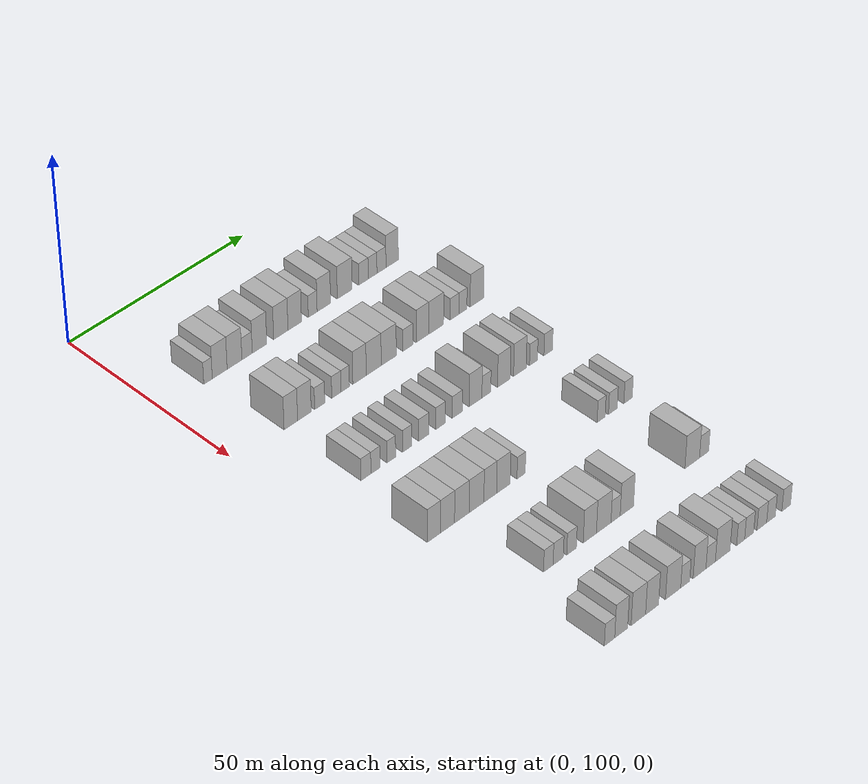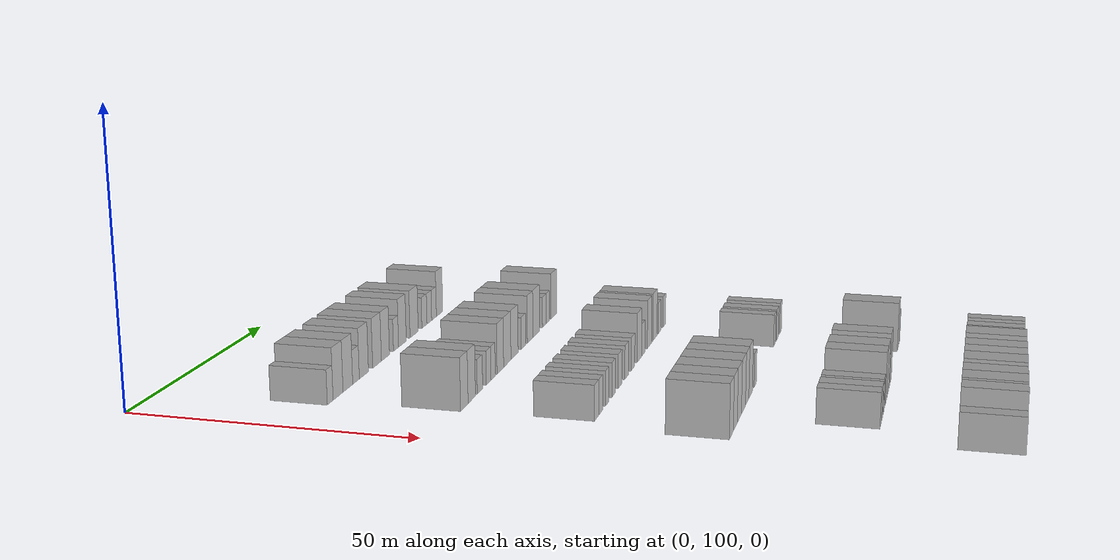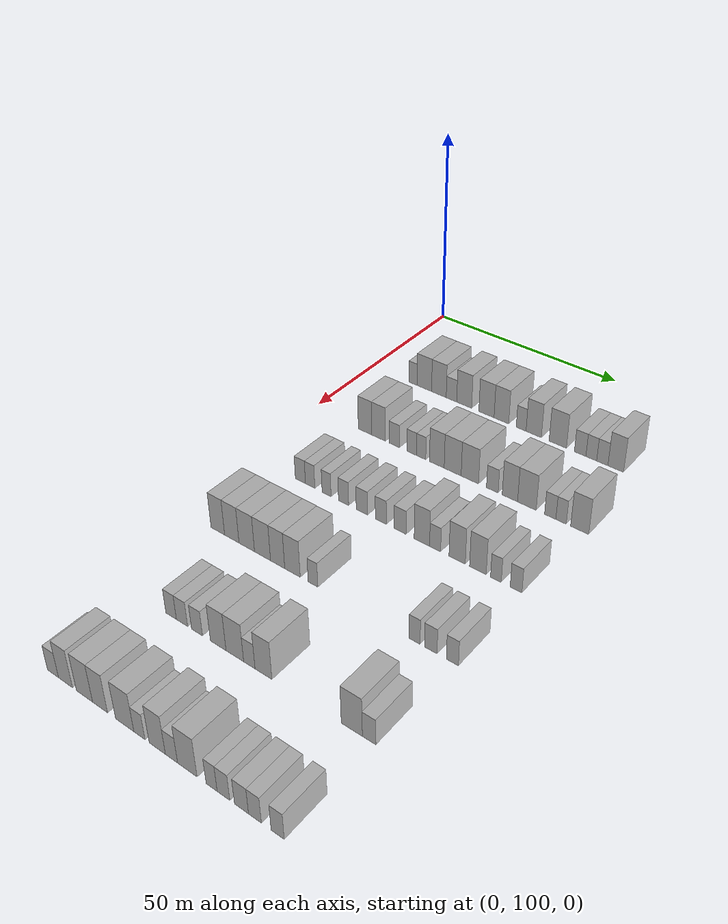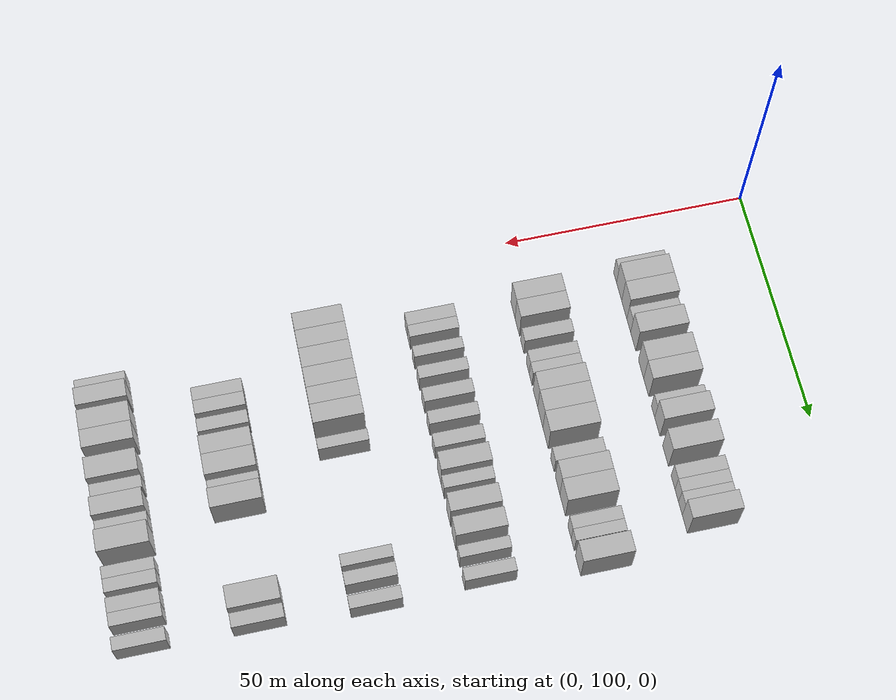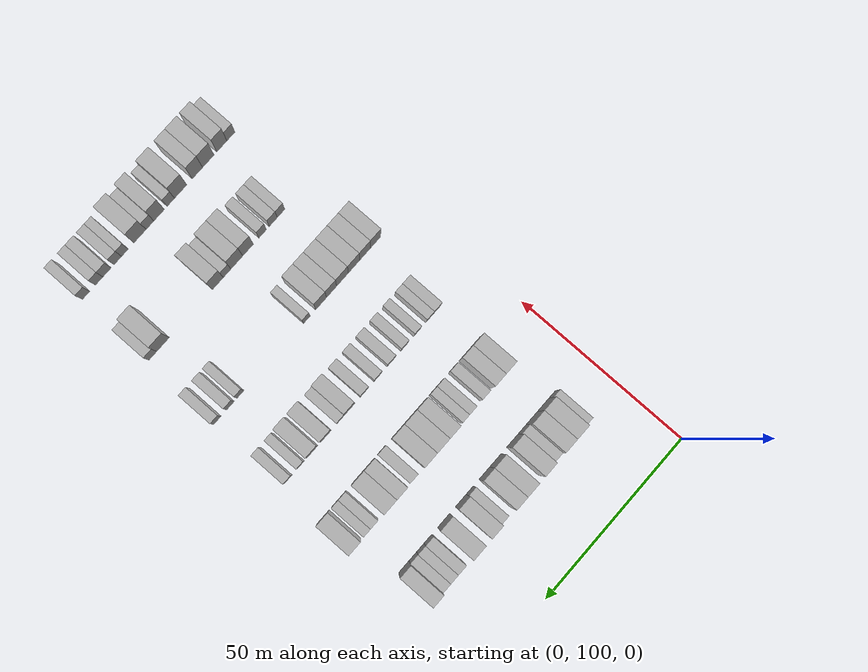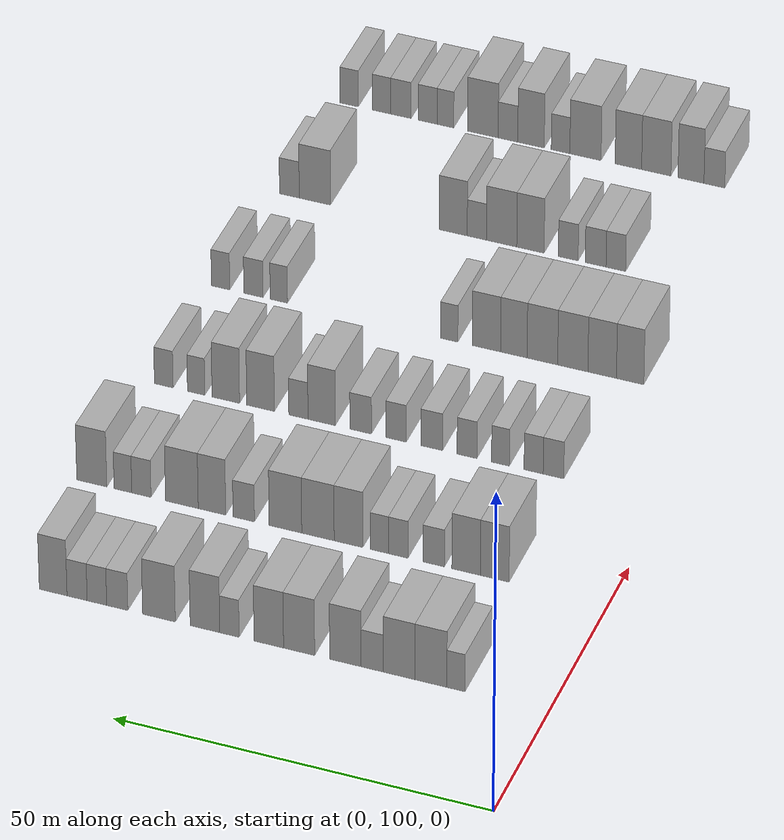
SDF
<sdf version="1.6">
 <world name="default">
  <model name="building_123">
   <static>1</static>
   <pose>25.0000 112.2786 0 0.000000 0.000000 0.000000</pose>
   <link name="link">
    <pose>0 0 3.00 0 0 0</pose>
    <collision name="collision"><geometry><box><size>10.0000 2.4017 6.0000</size></box></geometry></collision>
    <visual name="visual">
     <cast_shadows>0</cast_shadows>
     <geometry><box><size>10.0000 2.4017 6.0000</size></box></geometry>
     <material>
      <script>
       <uri>model://HANNAS_wall/materials/scripts</uri>
       <uri>model://HANNAS_wall/materials/textures</uri>
       <name>vrc/HANNAS_wall</name>
      </script>
     </material>
    </visual>
   </link>
  </model>
  <model name="building_124">
   <static>1</static>
   <pose>25.0000 115.5905 0 0.000000 0.000000 0.000000</pose>
   <link name="link">
    <pose>0 0 4.50 0 0 0</pose>
    <collision name="collision"><geometry><box><size>10.0000 4.2222 9.0000</size></box></geometry></collision>
    <visual name="visual">
     <cast_shadows>0</cast_shadows>
     <geometry><box><size>10.0000 4.2222 9.0000</size></box></geometry>
     <material>
      <script>
       <uri>model://HANNAS_wall/materials/scripts</uri>
       <uri>model://HANNAS_wall/materials/textures</uri>
       <name>vrc/HANNAS_wall</name>
      </script>
     </material>
    </visual>
   </link>
  </model>
  <model name="building_125">
   <static>1</static>
   <pose>25.0000 119.8025 0 0.000000 0.000000 0.000000</pose>
   <link name="link">
    <pose>0 0 4.50 0 0 0</pose>
    <collision name="collision"><geometry><box><size>10.0000 4.2018 9.0000</size></box></geometry></collision>
    <visual name="visual">
     <cast_shadows>0</cast_shadows>
     <geometry><box><size>10.0000 4.2018 9.0000</size></box></geometry>
     <material>
      <script>
       <uri>model://HANNAS_wall/materials/scripts</uri>
       <uri>model://HANNAS_wall/materials/textures</uri>
       <name>vrc/HANNAS_wall</name>
      </script>
     </material>
    </visual>
   </link>
  </model>
  <model name="building_126">
   <static>1</static>
   <pose>25.0000 123.3904 0 0.000000 0.000000 0.000000</pose>
   <link name="link">
    <pose>0 0 3.00 0 0 0</pose>
    <collision name="collision"><geometry><box><size>10.0000 2.9739 6.0000</size></box></geometry></collision>
    <visual name="visual">
     <cast_shadows>0</cast_shadows>
     <geometry><box><size>10.0000 2.9739 6.0000</size></box></geometry>
     <material>
      <script>
       <uri>model://HANNAS_wall/materials/scripts</uri>
       <uri>model://HANNAS_wall/materials/textures</uri>
       <name>vrc/HANNAS_wall</name>
      </script>
     </material>
    </visual>
   </link>
  </model>
  <model name="building_127">
   <static>1</static>
   <pose>25.0000 126.9693 0 0.000000 0.000000 0.000000</pose>
   <link name="link">
    <pose>0 0 4.50 0 0 0</pose>
    <collision name="collision"><geometry><box><size>10.0000 4.1839 9.0000</size></box></geometry></collision>
    <visual name="visual">
     <cast_shadows>0</cast_shadows>
     <geometry><box><size>10.0000 4.1839 9.0000</size></box></geometry>
     <material>
      <script>
       <uri>model://HANNAS_wall/materials/scripts</uri>
       <uri>model://HANNAS_wall/materials/textures</uri>
       <name>vrc/HANNAS_wall</name>
      </script>
     </material>
    </visual>
   </link>
  </model>
  <model name="building_128">
   <static>1</static>
   <pose>25.0000 133.1405 0 0.000000 0.000000 0.000000</pose>
   <link name="link">
    <pose>0 0 4.50 0 0 0</pose>
    <collision name="collision"><geometry><box><size>10.0000 4.1585 9.0000</size></box></geometry></collision>
    <visual name="visual">
     <cast_shadows>0</cast_shadows>
     <geometry><box><size>10.0000 4.1585 9.0000</size></box></geometry>
     <material>
      <script>
       <uri>model://HANNAS_wall/materials/scripts</uri>
       <uri>model://HANNAS_wall/materials/textures</uri>
       <name>vrc/HANNAS_wall</name>
      </script>
     </material>
    </visual>
   </link>
  </model>
  <model name="building_129">
   <static>1</static>
   <pose>25.0000 137.1946 0 0.000000 0.000000 0.000000</pose>
   <link name="link">
    <pose>0 0 4.50 0 0 0</pose>
    <collision name="collision"><geometry><box><size>10.0000 3.9497 9.0000</size></box></geometry></collision>
    <visual name="visual">
     <cast_shadows>0</cast_shadows>
     <geometry><box><size>10.0000 3.9497 9.0000</size></box></geometry>
     <material>
      <script>
       <uri>model://HANNAS_wall/materials/scripts</uri>
       <uri>model://HANNAS_wall/materials/textures</uri>
       <name>vrc/HANNAS_wall</name>
      </script>
     </material>
    </visual>
   </link>
  </model>
  <model name="building_130">
   <static>1</static>
   <pose>25.0000 142.4688 0 0.000000 0.000000 0.000000</pose>
   <link name="link">
    <pose>0 0 3.00 0 0 0</pose>
    <collision name="collision"><geometry><box><size>10.0000 2.5988 6.0000</size></box></geometry></collision>
    <visual name="visual">
     <cast_shadows>0</cast_shadows>
     <geometry><box><size>10.0000 2.5988 6.0000</size></box></geometry>
     <material>
      <script>
       <uri>model://HANNAS_wall/materials/scripts</uri>
       <uri>model://HANNAS_wall/materials/textures</uri>
       <name>vrc/HANNAS_wall</name>
      </script>
     </material>
    </visual>
   </link>
  </model>
  <model name="building_131">
   <static>1</static>
   <pose>25.0000 145.7587 0 0.000000 0.000000 0.000000</pose>
   <link name="link">
    <pose>0 0 4.50 0 0 0</pose>
    <collision name="collision"><geometry><box><size>10.0000 3.9810 9.0000</size></box></geometry></collision>
    <visual name="visual">
     <cast_shadows>0</cast_shadows>
     <geometry><box><size>10.0000 3.9810 9.0000</size></box></geometry>
     <material>
      <script>
       <uri>model://HANNAS_wall/materials/scripts</uri>
       <uri>model://HANNAS_wall/materials/textures</uri>
       <name>vrc/HANNAS_wall</name>
      </script>
     </material>
    </visual>
   </link>
  </model>
  <model name="building_132">
   <static>1</static>
   <pose>25.0000 151.9542 0 0.000000 0.000000 0.000000</pose>
   <link name="link">
    <pose>0 0 4.50 0 0 0</pose>
    <collision name="collision"><geometry><box><size>10.0000 4.4100 9.0000</size></box></geometry></collision>
    <visual name="visual">
     <cast_shadows>0</cast_shadows>
     <geometry><box><size>10.0000 4.4100 9.0000</size></box></geometry>
     <material>
      <script>
       <uri>model://HANNAS_wall/materials/scripts</uri>
       <uri>model://HANNAS_wall/materials/textures</uri>
       <name>vrc/HANNAS_wall</name>
      </script>
     </material>
    </visual>
   </link>
  </model>
  <model name="building_133">
   <static>1</static>
   <pose>25.0000 157.5946 0 0.000000 0.000000 0.000000</pose>
   <link name="link">
    <pose>0 0 3.00 0 0 0</pose>
    <collision name="collision"><geometry><box><size>10.0000 2.8708 6.0000</size></box></geometry></collision>
    <visual name="visual">
     <cast_shadows>0</cast_shadows>
     <geometry><box><size>10.0000 2.8708 6.0000</size></box></geometry>
     <material>
      <script>
       <uri>model://HANNAS_wall/materials/scripts</uri>
       <uri>model://HANNAS_wall/materials/textures</uri>
       <name>vrc/HANNAS_wall</name>
      </script>
     </material>
    </visual>
   </link>
  </model>
  <model name="building_134">
   <static>1</static>
   <pose>25.0000 160.3534 0 0.000000 0.000000 0.000000</pose>
   <link name="link">
    <pose>0 0 3.00 0 0 0</pose>
    <collision name="collision"><geometry><box><size>10.0000 2.6467 6.0000</size></box></geometry></collision>
    <visual name="visual">
     <cast_shadows>0</cast_shadows>
     <geometry><box><size>10.0000 2.6467 6.0000</size></box></geometry>
     <material>
      <script>
       <uri>model://HANNAS_wall/materials/scripts</uri>
       <uri>model://HANNAS_wall/materials/textures</uri>
       <name>vrc/HANNAS_wall</name>
      </script>
     </material>
    </visual>
   </link>
  </model>
  <model name="building_135">
   <static>1</static>
   <pose>25.0000 163.0423 0 0.000000 0.000000 0.000000</pose>
   <link name="link">
    <pose>0 0 3.00 0 0 0</pose>
    <collision name="collision"><geometry><box><size>10.0000 2.7311 6.0000</size></box></geometry></collision>
    <visual name="visual">
     <cast_shadows>0</cast_shadows>
     <geometry><box><size>10.0000 2.7311 6.0000</size></box></geometry>
     <material>
      <script>
       <uri>model://HANNAS_wall/materials/scripts</uri>
       <uri>model://HANNAS_wall/materials/textures</uri>
       <name>vrc/HANNAS_wall</name>
      </script>
     </material>
    </visual>
   </link>
  </model>
  <model name="building_136">
   <static>1</static>
   <pose>25.0000 166.2886 0 0.000000 0.000000 0.000000</pose>
   <link name="link">
    <pose>0 0 4.50 0 0 0</pose>
    <collision name="collision"><geometry><box><size>10.0000 3.7617 9.0000</size></box></geometry></collision>
    <visual name="visual">
     <cast_shadows>0</cast_shadows>
     <geometry><box><size>10.0000 3.7617 9.0000</size></box></geometry>
     <material>
      <script>
       <uri>model://HANNAS_wall/materials/scripts</uri>
       <uri>model://HANNAS_wall/materials/textures</uri>
       <name>vrc/HANNAS_wall</name>
      </script>
     </material>
    </visual>
   </link>
  </model>
  <model name="building_322">
   <static>1</static>
   <pose>47.0000 115.1683 0 0.000000 0.000000 0.000000</pose>
   <link name="link">
    <pose>0 0 4.50 0 0 0</pose>
    <collision name="collision"><geometry><box><size>10.0000 3.8309 9.0000</size></box></geometry></collision>
    <visual name="visual">
     <cast_shadows>0</cast_shadows>
     <geometry><box><size>10.0000 3.8309 9.0000</size></box></geometry>
     <material>
      <script>
       <uri>model://HANNAS_wall/materials/scripts</uri>
       <uri>model://HANNAS_wall/materials/textures</uri>
       <name>vrc/HANNAS_wall</name>
      </script>
     </material>
    </visual>
   </link>
  </model>
  <model name="building_323">
   <static>1</static>
   <pose>47.0000 119.0143 0 0.000000 0.000000 0.000000</pose>
   <link name="link">
    <pose>0 0 4.50 0 0 0</pose>
    <collision name="collision"><geometry><box><size>10.0000 3.8611 9.0000</size></box></geometry></collision>
    <visual name="visual">
     <cast_shadows>0</cast_shadows>
     <geometry><box><size>10.0000 3.8611 9.0000</size></box></geometry>
     <material>
      <script>
       <uri>model://HANNAS_wall/materials/scripts</uri>
       <uri>model://HANNAS_wall/materials/textures</uri>
       <name>vrc/HANNAS_wall</name>
      </script>
     </material>
    </visual>
   </link>
  </model>
  <model name="building_324">
   <static>1</static>
   <pose>47.0000 123.3989 0 0.000000 0.000000 0.000000</pose>
   <link name="link">
    <pose>0 0 3.00 0 0 0</pose>
    <collision name="collision"><geometry><box><size>10.0000 2.9080 6.0000</size></box></geometry></collision>
    <visual name="visual">
     <cast_shadows>0</cast_shadows>
     <geometry><box><size>10.0000 2.9080 6.0000</size></box></geometry>
     <material>
      <script>
       <uri>model://HANNAS_wall/materials/scripts</uri>
       <uri>model://HANNAS_wall/materials/textures</uri>
       <name>vrc/HANNAS_wall</name>
      </script>
     </material>
    </visual>
   </link>
  </model>
  <model name="building_325">
   <static>1</static>
   <pose>47.0000 128.1747 0 0.000000 0.000000 0.000000</pose>
   <link name="link">
    <pose>0 0 3.00 0 0 0</pose>
    <collision name="collision"><geometry><box><size>10.0000 2.6438 6.0000</size></box></geometry></collision>
    <visual name="visual">
     <cast_shadows>0</cast_shadows>
     <geometry><box><size>10.0000 2.6438 6.0000</size></box></geometry>
     <material>
      <script>
       <uri>model://HANNAS_wall/materials/scripts</uri>
       <uri>model://HANNAS_wall/materials/textures</uri>
       <name>vrc/HANNAS_wall</name>
      </script>
     </material>
    </visual>
   </link>
  </model>
  <model name="building_326">
   <static>1</static>
   <pose>47.0000 130.7262 0 0.000000 0.000000 0.000000</pose>
   <link name="link">
    <pose>0 0 3.00 0 0 0</pose>
    <collision name="collision"><geometry><box><size>10.0000 2.4593 6.0000</size></box></geometry></collision>
    <visual name="visual">
     <cast_shadows>0</cast_shadows>
     <geometry><box><size>10.0000 2.4593 6.0000</size></box></geometry>
     <material>
      <script>
       <uri>model://HANNAS_wall/materials/scripts</uri>
       <uri>model://HANNAS_wall/materials/textures</uri>
       <name>vrc/HANNAS_wall</name>
      </script>
     </material>
    </visual>
   </link>
  </model>
  <model name="building_327">
   <static>1</static>
   <pose>47.0000 134.8980 0 0.000000 0.000000 0.000000</pose>
   <link name="link">
    <pose>0 0 4.50 0 0 0</pose>
    <collision name="collision"><geometry><box><size>10.0000 3.8842 9.0000</size></box></geometry></collision>
    <visual name="visual">
     <cast_shadows>0</cast_shadows>
     <geometry><box><size>10.0000 3.8842 9.0000</size></box></geometry>
     <material>
      <script>
       <uri>model://HANNAS_wall/materials/scripts</uri>
       <uri>model://HANNAS_wall/materials/textures</uri>
       <name>vrc/HANNAS_wall</name>
      </script>
     </material>
    </visual>
   </link>
  </model>
  <model name="building_328">
   <static>1</static>
   <pose>47.0000 139.0442 0 0.000000 0.000000 0.000000</pose>
   <link name="link">
    <pose>0 0 4.50 0 0 0</pose>
    <collision name="collision"><geometry><box><size>10.0000 4.4082 9.0000</size></box></geometry></collision>
    <visual name="visual">
     <cast_shadows>0</cast_shadows>
     <geometry><box><size>10.0000 4.4082 9.0000</size></box></geometry>
     <material>
      <script>
       <uri>model://HANNAS_wall/materials/scripts</uri>
       <uri>model://HANNAS_wall/materials/textures</uri>
       <name>vrc/HANNAS_wall</name>
      </script>
     </material>
    </visual>
   </link>
  </model>
  <model name="building_329">
   <static>1</static>
   <pose>47.0000 143.4681 0 0.000000 0.000000 0.000000</pose>
   <link name="link">
    <pose>0 0 4.50 0 0 0</pose>
    <collision name="collision"><geometry><box><size>10.0000 4.4397 9.0000</size></box></geometry></collision>
    <visual name="visual">
     <cast_shadows>0</cast_shadows>
     <geometry><box><size>10.0000 4.4397 9.0000</size></box></geometry>
     <material>
      <script>
       <uri>model://HANNAS_wall/materials/scripts</uri>
       <uri>model://HANNAS_wall/materials/textures</uri>
       <name>vrc/HANNAS_wall</name>
      </script>
     </material>
    </visual>
   </link>
  </model>
  <model name="building_330">
   <static>1</static>
   <pose>47.0000 149.1488 0 0.000000 0.000000 0.000000</pose>
   <link name="link">
    <pose>0 0 3.00 0 0 0</pose>
    <collision name="collision"><geometry><box><size>10.0000 2.9217 6.0000</size></box></geometry></collision>
    <visual name="visual">
     <cast_shadows>0</cast_shadows>
     <geometry><box><size>10.0000 2.9217 6.0000</size></box></geometry>
     <material>
      <script>
       <uri>model://HANNAS_wall/materials/scripts</uri>
       <uri>model://HANNAS_wall/materials/textures</uri>
       <name>vrc/HANNAS_wall</name>
      </script>
     </material>
    </visual>
   </link>
  </model>
  <model name="building_331">
   <static>1</static>
   <pose>47.0000 153.4893 0 0.000000 0.000000 0.000000</pose>
   <link name="link">
    <pose>0 0 4.50 0 0 0</pose>
    <collision name="collision"><geometry><box><size>10.0000 3.7593 9.0000</size></box></geometry></collision>
    <visual name="visual">
     <cast_shadows>0</cast_shadows>
     <geometry><box><size>10.0000 3.7593 9.0000</size></box></geometry>
     <material>
      <script>
       <uri>model://HANNAS_wall/materials/scripts</uri>
       <uri>model://HANNAS_wall/materials/textures</uri>
       <name>vrc/HANNAS_wall</name>
      </script>
     </material>
    </visual>
   </link>
  </model>
  <model name="building_332">
   <static>1</static>
   <pose>47.0000 157.6113 0 0.000000 0.000000 0.000000</pose>
   <link name="link">
    <pose>0 0 4.50 0 0 0</pose>
    <collision name="collision"><geometry><box><size>10.0000 4.4848 9.0000</size></box></geometry></collision>
    <visual name="visual">
     <cast_shadows>0</cast_shadows>
     <geometry><box><size>10.0000 4.4848 9.0000</size></box></geometry>
     <material>
      <script>
       <uri>model://HANNAS_wall/materials/scripts</uri>
       <uri>model://HANNAS_wall/materials/textures</uri>
       <name>vrc/HANNAS_wall</name>
      </script>
     </material>
    </visual>
   </link>
  </model>
  <model name="building_333">
   <static>1</static>
   <pose>47.0000 163.1774 0 0.000000 0.000000 0.000000</pose>
   <link name="link">
    <pose>0 0 3.00 0 0 0</pose>
    <collision name="collision"><geometry><box><size>10.0000 2.6474 6.0000</size></box></geometry></collision>
    <visual name="visual">
     <cast_shadows>0</cast_shadows>
     <geometry><box><size>10.0000 2.6474 6.0000</size></box></geometry>
     <material>
      <script>
       <uri>model://HANNAS_wall/materials/scripts</uri>
       <uri>model://HANNAS_wall/materials/textures</uri>
       <name>vrc/HANNAS_wall</name>
      </script>
     </material>
    </visual>
   </link>
  </model>
  <model name="building_334">
   <static>1</static>
   <pose>47.0000 165.7161 0 0.000000 0.000000 0.000000</pose>
   <link name="link">
    <pose>0 0 3.00 0 0 0</pose>
    <collision name="collision"><geometry><box><size>10.0000 2.4300 6.0000</size></box></geometry></collision>
    <visual name="visual">
     <cast_shadows>0</cast_shadows>
     <geometry><box><size>10.0000 2.4300 6.0000</size></box></geometry>
     <material>
      <script>
       <uri>model://HANNAS_wall/materials/scripts</uri>
       <uri>model://HANNAS_wall/materials/textures</uri>
       <name>vrc/HANNAS_wall</name>
      </script>
     </material>
    </visual>
   </link>
  </model>
  <model name="building_335">
   <static>1</static>
   <pose>47.0000 170.0003 0 0.000000 0.000000 0.000000</pose>
   <link name="link">
    <pose>0 0 4.50 0 0 0</pose>
    <collision name="collision"><geometry><box><size>10.0000 4.1384 9.0000</size></box></geometry></collision>
    <visual name="visual">
     <cast_shadows>0</cast_shadows>
     <geometry><box><size>10.0000 4.1384 9.0000</size></box></geometry>
     <material>
      <script>
       <uri>model://HANNAS_wall/materials/scripts</uri>
       <uri>model://HANNAS_wall/materials/textures</uri>
       <name>vrc/HANNAS_wall</name>
      </script>
     </material>
    </visual>
   </link>
  </model>
  <model name="building_498">
   <static>1</static>
   <pose>69.0000 115.1931 0 0.000000 0.000000 0.000000</pose>
   <link name="link">
    <pose>0 0 3.00 0 0 0</pose>
    <collision name="collision"><geometry><box><size>10.0000 2.8079 6.0000</size></box></geometry></collision>
    <visual name="visual">
     <cast_shadows>0</cast_shadows>
     <geometry><box><size>10.0000 2.8079 6.0000</size></box></geometry>
     <material>
      <script>
       <uri>model://HANNAS_wall/materials/scripts</uri>
       <uri>model://HANNAS_wall/materials/textures</uri>
       <name>vrc/HANNAS_wall</name>
      </script>
     </material>
    </visual>
   </link>
  </model>
  <model name="building_499">
   <static>1</static>
   <pose>69.0000 117.8952 0 0.000000 0.000000 0.000000</pose>
   <link name="link">
    <pose>0 0 3.00 0 0 0</pose>
    <collision name="collision"><geometry><box><size>10.0000 2.5963 6.0000</size></box></geometry></collision>
    <visual name="visual">
     <cast_shadows>0</cast_shadows>
     <geometry><box><size>10.0000 2.5963 6.0000</size></box></geometry>
     <material>
      <script>
       <uri>model://HANNAS_wall/materials/scripts</uri>
       <uri>model://HANNAS_wall/materials/textures</uri>
       <name>vrc/HANNAS_wall</name>
      </script>
     </material>
    </visual>
   </link>
  </model>
  <model name="building_500">
   <static>1</static>
   <pose>69.0000 122.4084 0 0.000000 0.000000 0.000000</pose>
   <link name="link">
    <pose>0 0 3.00 0 0 0</pose>
    <collision name="collision"><geometry><box><size>10.0000 2.4301 6.0000</size></box></geometry></collision>
    <visual name="visual">
     <cast_shadows>0</cast_shadows>
     <geometry><box><size>10.0000 2.4301 6.0000</size></box></geometry>
     <material>
      <script>
       <uri>model://HANNAS_wall/materials/scripts</uri>
       <uri>model://HANNAS_wall/materials/textures</uri>
       <name>vrc/HANNAS_wall</name>
      </script>
     </material>
    </visual>
   </link>
  </model>
  <model name="building_501">
   <static>1</static>
   <pose>69.0000 126.9765 0 0.000000 0.000000 0.000000</pose>
   <link name="link">
    <pose>0 0 3.00 0 0 0</pose>
    <collision name="collision"><geometry><box><size>10.0000 2.7060 6.0000</size></box></geometry></collision>
    <visual name="visual">
     <cast_shadows>0</cast_shadows>
     <geometry><box><size>10.0000 2.7060 6.0000</size></box></geometry>
     <material>
      <script>
       <uri>model://HANNAS_wall/materials/scripts</uri>
       <uri>model://HANNAS_wall/materials/textures</uri>
       <name>vrc/HANNAS_wall</name>
      </script>
     </material>
    </visual>
   </link>
  </model>
  <model name="building_502">
   <static>1</static>
   <pose>69.0000 131.8144 0 0.000000 0.000000 0.000000</pose>
   <link name="link">
    <pose>0 0 3.00 0 0 0</pose>
    <collision name="collision"><geometry><box><size>10.0000 2.9699 6.0000</size></box></geometry></collision>
    <visual name="visual">
     <cast_shadows>0</cast_shadows>
     <geometry><box><size>10.0000 2.9699 6.0000</size></box></geometry>
     <material>
      <script>
       <uri>model://HANNAS_wall/materials/scripts</uri>
       <uri>model://HANNAS_wall/materials/textures</uri>
       <name>vrc/HANNAS_wall</name>
      </script>
     </material>
    </visual>
   </link>
  </model>
  <model name="building_503">
   <static>1</static>
   <pose>69.0000 136.6972 0 0.000000 0.000000 0.000000</pose>
   <link name="link">
    <pose>0 0 3.00 0 0 0</pose>
    <collision name="collision"><geometry><box><size>10.0000 2.7955 6.0000</size></box></geometry></collision>
    <visual name="visual">
     <cast_shadows>0</cast_shadows>
     <geometry><box><size>10.0000 2.7955 6.0000</size></box></geometry>
     <material>
      <script>
       <uri>model://HANNAS_wall/materials/scripts</uri>
       <uri>model://HANNAS_wall/materials/textures</uri>
       <name>vrc/HANNAS_wall</name>
      </script>
     </material>
    </visual>
   </link>
  </model>
  <model name="building_504">
   <static>1</static>
   <pose>69.0000 141.5818 0 0.000000 0.000000 0.000000</pose>
   <link name="link">
    <pose>0 0 3.00 0 0 0</pose>
    <collision name="collision"><geometry><box><size>10.0000 2.9737 6.0000</size></box></geometry></collision>
    <visual name="visual">
     <cast_shadows>0</cast_shadows>
     <geometry><box><size>10.0000 2.9737 6.0000</size></box></geometry>
     <material>
      <script>
       <uri>model://HANNAS_wall/materials/scripts</uri>
       <uri>model://HANNAS_wall/materials/textures</uri>
       <name>vrc/HANNAS_wall</name>
      </script>
     </material>
    </visual>
   </link>
  </model>
  <model name="building_505">
   <static>1</static>
   <pose>69.0000 146.9594 0 0.000000 0.000000 0.000000</pose>
   <link name="link">
    <pose>0 0 4.50 0 0 0</pose>
    <collision name="collision"><geometry><box><size>10.0000 3.7816 9.0000</size></box></geometry></collision>
    <visual name="visual">
     <cast_shadows>0</cast_shadows>
     <geometry><box><size>10.0000 3.7816 9.0000</size></box></geometry>
     <material>
      <script>
       <uri>model://HANNAS_wall/materials/scripts</uri>
       <uri>model://HANNAS_wall/materials/textures</uri>
       <name>vrc/HANNAS_wall</name>
      </script>
     </material>
    </visual>
   </link>
  </model>
  <model name="building_506">
   <static>1</static>
   <pose>69.0000 150.1742 0 0.000000 0.000000 0.000000</pose>
   <link name="link">
    <pose>0 0 3.00 0 0 0</pose>
    <collision name="collision"><geometry><box><size>10.0000 2.6480 6.0000</size></box></geometry></collision>
    <visual name="visual">
     <cast_shadows>0</cast_shadows>
     <geometry><box><size>10.0000 2.6480 6.0000</size></box></geometry>
     <material>
      <script>
       <uri>model://HANNAS_wall/materials/scripts</uri>
       <uri>model://HANNAS_wall/materials/textures</uri>
       <name>vrc/HANNAS_wall</name>
      </script>
     </material>
    </visual>
   </link>
  </model>
  <model name="building_507">
   <static>1</static>
   <pose>69.0000 155.4140 0 0.000000 0.000000 0.000000</pose>
   <link name="link">
    <pose>0 0 4.50 0 0 0</pose>
    <collision name="collision"><geometry><box><size>10.0000 3.8316 9.0000</size></box></geometry></collision>
    <visual name="visual">
     <cast_shadows>0</cast_shadows>
     <geometry><box><size>10.0000 3.8316 9.0000</size></box></geometry>
     <material>
      <script>
       <uri>model://HANNAS_wall/materials/scripts</uri>
       <uri>model://HANNAS_wall/materials/textures</uri>
       <name>vrc/HANNAS_wall</name>
      </script>
     </material>
    </visual>
   </link>
  </model>
  <model name="building_508">
   <static>1</static>
   <pose>69.0000 160.2428 0 0.000000 0.000000 0.000000</pose>
   <link name="link">
    <pose>0 0 4.50 0 0 0</pose>
    <collision name="collision"><geometry><box><size>10.0000 3.8260 9.0000</size></box></geometry></collision>
    <visual name="visual">
     <cast_shadows>0</cast_shadows>
     <geometry><box><size>10.0000 3.8260 9.0000</size></box></geometry>
     <material>
      <script>
       <uri>model://HANNAS_wall/materials/scripts</uri>
       <uri>model://HANNAS_wall/materials/textures</uri>
       <name>vrc/HANNAS_wall</name>
      </script>
     </material>
    </visual>
   </link>
  </model>
  <model name="building_509">
   <static>1</static>
   <pose>69.0000 164.3667 0 0.000000 0.000000 0.000000</pose>
   <link name="link">
    <pose>0 0 3.00 0 0 0</pose>
    <collision name="collision"><geometry><box><size>10.0000 2.4219 6.0000</size></box></geometry></collision>
    <visual name="visual">
     <cast_shadows>0</cast_shadows>
     <geometry><box><size>10.0000 2.4219 6.0000</size></box></geometry>
     <material>
      <script>
       <uri>model://HANNAS_wall/materials/scripts</uri>
       <uri>model://HANNAS_wall/materials/textures</uri>
       <name>vrc/HANNAS_wall</name>
      </script>
     </material>
    </visual>
   </link>
  </model>
  <model name="building_510">
   <static>1</static>
   <pose>69.0000 168.8809 0 0.000000 0.000000 0.000000</pose>
   <link name="link">
    <pose>0 0 3.00 0 0 0</pose>
    <collision name="collision"><geometry><box><size>10.0000 2.6066 6.0000</size></box></geometry></collision>
    <visual name="visual">
     <cast_shadows>0</cast_shadows>
     <geometry><box><size>10.0000 2.6066 6.0000</size></box></geometry>
     <material>
      <script>
       <uri>model://HANNAS_wall/materials/scripts</uri>
       <uri>model://HANNAS_wall/materials/textures</uri>
       <name>vrc/HANNAS_wall</name>
      </script>
     </material>
    </visual>
   </link>
  </model>
  <model name="building_695">
   <static>1</static>
   <pose>91.0000 112.5064 0 0.000000 0.000000 0.000000</pose>
   <link name="link">
    <pose>0 0 4.50 0 0 0</pose>
    <collision name="collision"><geometry><box><size>10.0000 3.7690 9.0000</size></box></geometry></collision>
    <visual name="visual">
     <cast_shadows>0</cast_shadows>
     <geometry><box><size>10.0000 3.7690 9.0000</size></box></geometry>
     <material>
      <script>
       <uri>model://HANNAS_wall/materials/scripts</uri>
       <uri>model://HANNAS_wall/materials/textures</uri>
       <name>vrc/HANNAS_wall</name>
      </script>
     </material>
    </visual>
   </link>
  </model>
  <model name="building_696">
   <static>1</static>
   <pose>91.0000 116.3560 0 0.000000 0.000000 0.000000</pose>
   <link name="link">
    <pose>0 0 4.50 0 0 0</pose>
    <collision name="collision"><geometry><box><size>10.0000 3.9302 9.0000</size></box></geometry></collision>
    <visual name="visual">
     <cast_shadows>0</cast_shadows>
     <geometry><box><size>10.0000 3.9302 9.0000</size></box></geometry>
     <material>
      <script>
       <uri>model://HANNAS_wall/materials/scripts</uri>
       <uri>model://HANNAS_wall/materials/textures</uri>
       <name>vrc/HANNAS_wall</name>
      </script>
     </material>
    </visual>
   </link>
  </model>
  <model name="building_697">
   <static>1</static>
   <pose>91.0000 120.4062 0 0.000000 0.000000 0.000000</pose>
   <link name="link">
    <pose>0 0 4.50 0 0 0</pose>
    <collision name="collision"><geometry><box><size>10.0000 4.1702 9.0000</size></box></geometry></collision>
    <visual name="visual">
     <cast_shadows>0</cast_shadows>
     <geometry><box><size>10.0000 4.1702 9.0000</size></box></geometry>
     <material>
      <script>
       <uri>model://HANNAS_wall/materials/scripts</uri>
       <uri>model://HANNAS_wall/materials/textures</uri>
       <name>vrc/HANNAS_wall</name>
      </script>
     </material>
    </visual>
   </link>
  </model>
  <model name="building_698">
   <static>1</static>
   <pose>91.0000 124.6058 0 0.000000 0.000000 0.000000</pose>
   <link name="link">
    <pose>0 0 4.50 0 0 0</pose>
    <collision name="collision"><geometry><box><size>10.0000 4.2290 9.0000</size></box></geometry></collision>
    <visual name="visual">
     <cast_shadows>0</cast_shadows>
     <geometry><box><size>10.0000 4.2290 9.0000</size></box></geometry>
     <material>
      <script>
       <uri>model://HANNAS_wall/materials/scripts</uri>
       <uri>model://HANNAS_wall/materials/textures</uri>
       <name>vrc/HANNAS_wall</name>
      </script>
     </material>
    </visual>
   </link>
  </model>
  <model name="building_699">
   <static>1</static>
   <pose>91.0000 128.5540 0 0.000000 0.000000 0.000000</pose>
   <link name="link">
    <pose>0 0 4.50 0 0 0</pose>
    <collision name="collision"><geometry><box><size>10.0000 3.6673 9.0000</size></box></geometry></collision>
    <visual name="visual">
     <cast_shadows>0</cast_shadows>
     <geometry><box><size>10.0000 3.6673 9.0000</size></box></geometry>
     <material>
      <script>
       <uri>model://HANNAS_wall/materials/scripts</uri>
       <uri>model://HANNAS_wall/materials/textures</uri>
       <name>vrc/HANNAS_wall</name>
      </script>
     </material>
    </visual>
   </link>
  </model>
  <model name="building_700">
   <static>1</static>
   <pose>91.0000 132.3601 0 0.000000 0.000000 0.000000</pose>
   <link name="link">
    <pose>0 0 4.50 0 0 0</pose>
    <collision name="collision"><geometry><box><size>10.0000 3.9449 9.0000</size></box></geometry></collision>
    <visual name="visual">
     <cast_shadows>0</cast_shadows>
     <geometry><box><size>10.0000 3.9449 9.0000</size></box></geometry>
     <material>
      <script>
       <uri>model://HANNAS_wall/materials/scripts</uri>
       <uri>model://HANNAS_wall/materials/textures</uri>
       <name>vrc/HANNAS_wall</name>
      </script>
     </material>
    </visual>
   </link>
  </model>
  <model name="building_701">
   <static>1</static>
   <pose>91.0000 137.5354 0 0.000000 0.000000 0.000000</pose>
   <link name="link">
    <pose>0 0 3.00 0 0 0</pose>
    <collision name="collision"><geometry><box><size>10.0000 2.4056 6.0000</size></box></geometry></collision>
    <visual name="visual">
     <cast_shadows>0</cast_shadows>
     <geometry><box><size>10.0000 2.4056 6.0000</size></box></geometry>
     <material>
      <script>
       <uri>model://HANNAS_wall/materials/scripts</uri>
       <uri>model://HANNAS_wall/materials/textures</uri>
       <name>vrc/HANNAS_wall</name>
      </script>
     </material>
    </visual>
   </link>
  </model>
  <model name="building_702">
   <static>1</static>
   <pose>91.0000 161.4003 0 0.000000 0.000000 0.000000</pose>
   <link name="link">
    <pose>0 0 3.00 0 0 0</pose>
    <collision name="collision"><geometry><box><size>10.0000 2.4414 6.0000</size></box></geometry></collision>
    <visual name="visual">
     <cast_shadows>0</cast_shadows>
     <geometry><box><size>10.0000 2.4414 6.0000</size></box></geometry>
     <material>
      <script>
       <uri>model://HANNAS_wall/materials/scripts</uri>
       <uri>model://HANNAS_wall/materials/textures</uri>
       <name>vrc/HANNAS_wall</name>
      </script>
     </material>
    </visual>
   </link>
  </model>
  <model name="building_703">
   <static>1</static>
   <pose>91.0000 164.9762 0 0.000000 0.000000 0.000000</pose>
   <link name="link">
    <pose>0 0 3.00 0 0 0</pose>
    <collision name="collision"><geometry><box><size>10.0000 2.7105 6.0000</size></box></geometry></collision>
    <visual name="visual">
     <cast_shadows>0</cast_shadows>
     <geometry><box><size>10.0000 2.7105 6.0000</size></box></geometry>
     <material>
      <script>
       <uri>model://HANNAS_wall/materials/scripts</uri>
       <uri>model://HANNAS_wall/materials/textures</uri>
       <name>vrc/HANNAS_wall</name>
      </script>
     </material>
    </visual>
   </link>
  </model>
  <model name="building_704">
   <static>1</static>
   <pose>91.0000 169.6224 0 0.000000 0.000000 0.000000</pose>
   <link name="link">
    <pose>0 0 3.00 0 0 0</pose>
    <collision name="collision"><geometry><box><size>10.0000 2.5819 6.0000</size></box></geometry></collision>
    <visual name="visual">
     <cast_shadows>0</cast_shadows>
     <geometry><box><size>10.0000 2.5819 6.0000</size></box></geometry>
     <material>
      <script>
       <uri>model://HANNAS_wall/materials/scripts</uri>
       <uri>model://HANNAS_wall/materials/textures</uri>
       <name>vrc/HANNAS_wall</name>
      </script>
     </material>
    </visual>
   </link>
  </model>
  <model name="building_876">
   <static>1</static>
   <pose>113.0000 122.1999 0 0.000000 0.000000 0.000000</pose>
   <link name="link">
    <pose>0 0 3.00 0 0 0</pose>
    <collision name="collision"><geometry><box><size>10.0000 2.7411 6.0000</size></box></geometry></collision>
    <visual name="visual">
     <cast_shadows>0</cast_shadows>
     <geometry><box><size>10.0000 2.7411 6.0000</size></box></geometry>
     <material>
      <script>
       <uri>model://HANNAS_wall/materials/scripts</uri>
       <uri>model://HANNAS_wall/materials/textures</uri>
       <name>vrc/HANNAS_wall</name>
      </script>
     </material>
    </visual>
   </link>
  </model>
  <model name="building_877">
   <static>1</static>
   <pose>113.0000 125.0289 0 0.000000 0.000000 0.000000</pose>
   <link name="link">
    <pose>0 0 3.00 0 0 0</pose>
    <collision name="collision"><geometry><box><size>10.0000 2.9170 6.0000</size></box></geometry></collision>
    <visual name="visual">
     <cast_shadows>0</cast_shadows>
     <geometry><box><size>10.0000 2.9170 6.0000</size></box></geometry>
     <material>
      <script>
       <uri>model://HANNAS_wall/materials/scripts</uri>
       <uri>model://HANNAS_wall/materials/textures</uri>
       <name>vrc/HANNAS_wall</name>
      </script>
     </material>
    </visual>
   </link>
  </model>
  <model name="building_878">
   <static>1</static>
   <pose>113.0000 128.8750 0 0.000000 0.000000 0.000000</pose>
   <link name="link">
    <pose>0 0 3.00 0 0 0</pose>
    <collision name="collision"><geometry><box><size>10.0000 2.7752 6.0000</size></box></geometry></collision>
    <visual name="visual">
     <cast_shadows>0</cast_shadows>
     <geometry><box><size>10.0000 2.7752 6.0000</size></box></geometry>
     <material>
      <script>
       <uri>model://HANNAS_wall/materials/scripts</uri>
       <uri>model://HANNAS_wall/materials/textures</uri>
       <name>vrc/HANNAS_wall</name>
      </script>
     </material>
    </visual>
   </link>
  </model>
  <model name="building_879">
   <static>1</static>
   <pose>113.0000 134.1883 0 0.000000 0.000000 0.000000</pose>
   <link name="link">
    <pose>0 0 4.50 0 0 0</pose>
    <collision name="collision"><geometry><box><size>10.0000 3.8515 9.0000</size></box></geometry></collision>
    <visual name="visual">
     <cast_shadows>0</cast_shadows>
     <geometry><box><size>10.0000 3.8515 9.0000</size></box></geometry>
     <material>
      <script>
       <uri>model://HANNAS_wall/materials/scripts</uri>
       <uri>model://HANNAS_wall/materials/textures</uri>
       <name>vrc/HANNAS_wall</name>
      </script>
     </material>
    </visual>
   </link>
  </model>
  <model name="building_880">
   <static>1</static>
   <pose>113.0000 138.2492 0 0.000000 0.000000 0.000000</pose>
   <link name="link">
    <pose>0 0 4.50 0 0 0</pose>
    <collision name="collision"><geometry><box><size>10.0000 4.2704 9.0000</size></box></geometry></collision>
    <visual name="visual">
     <cast_shadows>0</cast_shadows>
     <geometry><box><size>10.0000 4.2704 9.0000</size></box></geometry>
     <material>
      <script>
       <uri>model://HANNAS_wall/materials/scripts</uri>
       <uri>model://HANNAS_wall/materials/textures</uri>
       <name>vrc/HANNAS_wall</name>
      </script>
     </material>
    </visual>
   </link>
  </model>
  <model name="building_881">
   <static>1</static>
   <pose>113.0000 141.7437 0 0.000000 0.000000 0.000000</pose>
   <link name="link">
    <pose>0 0 3.00 0 0 0</pose>
    <collision name="collision"><geometry><box><size>10.0000 2.7186 6.0000</size></box></geometry></collision>
    <visual name="visual">
     <cast_shadows>0</cast_shadows>
     <geometry><box><size>10.0000 2.7186 6.0000</size></box></geometry>
     <material>
      <script>
       <uri>model://HANNAS_wall/materials/scripts</uri>
       <uri>model://HANNAS_wall/materials/textures</uri>
       <name>vrc/HANNAS_wall</name>
      </script>
     </material>
    </visual>
   </link>
  </model>
  <model name="building_882">
   <static>1</static>
   <pose>113.0000 145.0798 0 0.000000 0.000000 0.000000</pose>
   <link name="link">
    <pose>0 0 4.50 0 0 0</pose>
    <collision name="collision"><geometry><box><size>10.0000 3.9534 9.0000</size></box></geometry></collision>
    <visual name="visual">
     <cast_shadows>0</cast_shadows>
     <geometry><box><size>10.0000 3.9534 9.0000</size></box></geometry>
     <material>
      <script>
       <uri>model://HANNAS_wall/materials/scripts</uri>
       <uri>model://HANNAS_wall/materials/textures</uri>
       <name>vrc/HANNAS_wall</name>
      </script>
     </material>
    </visual>
   </link>
  </model>
  <model name="building_883">
   <static>1</static>
   <pose>113.0000 164.7642 0 0.000000 0.000000 0.000000</pose>
   <link name="link">
    <pose>0 0 4.50 0 0 0</pose>
    <collision name="collision"><geometry><box><size>10.0000 4.4718 9.0000</size></box></geometry></collision>
    <visual name="visual">
     <cast_shadows>0</cast_shadows>
     <geometry><box><size>10.0000 4.4718 9.0000</size></box></geometry>
     <material>
      <script>
       <uri>model://HANNAS_wall/materials/scripts</uri>
       <uri>model://HANNAS_wall/materials/textures</uri>
       <name>vrc/HANNAS_wall</name>
      </script>
     </material>
    </visual>
   </link>
  </model>
  <model name="building_884">
   <static>1</static>
   <pose>113.0000 168.4079 0 0.000000 0.000000 0.000000</pose>
   <link name="link">
    <pose>0 0 3.00 0 0 0</pose>
    <collision name="collision"><geometry><box><size>10.0000 2.8155 6.0000</size></box></geometry></collision>
    <visual name="visual">
     <cast_shadows>0</cast_shadows>
     <geometry><box><size>10.0000 2.8155 6.0000</size></box></geometry>
     <material>
      <script>
       <uri>model://HANNAS_wall/materials/scripts</uri>
       <uri>model://HANNAS_wall/materials/textures</uri>
       <name>vrc/HANNAS_wall</name>
      </script>
     </material>
    </visual>
   </link>
  </model>
  <model name="building_1065">
   <static>1</static>
   <pose>135.0000 115.9704 0 0.000000 0.000000 0.000000</pose>
   <link name="link">
    <pose>0 0 3.00 0 0 0</pose>
    <collision name="collision"><geometry><box><size>10.0000 2.9414 6.0000</size></box></geometry></collision>
    <visual name="visual">
     <cast_shadows>0</cast_shadows>
     <geometry><box><size>10.0000 2.9414 6.0000</size></box></geometry>
     <material>
      <script>
       <uri>model://HANNAS_wall/materials/scripts</uri>
       <uri>model://HANNAS_wall/materials/textures</uri>
       <name>vrc/HANNAS_wall</name>
      </script>
     </material>
    </visual>
   </link>
  </model>
  <model name="building_1066">
   <static>1</static>
   <pose>135.0000 119.2804 0 0.000000 0.000000 0.000000</pose>
   <link name="link">
    <pose>0 0 4.50 0 0 0</pose>
    <collision name="collision"><geometry><box><size>10.0000 3.6786 9.0000</size></box></geometry></collision>
    <visual name="visual">
     <cast_shadows>0</cast_shadows>
     <geometry><box><size>10.0000 3.6786 9.0000</size></box></geometry>
     <material>
      <script>
       <uri>model://HANNAS_wall/materials/scripts</uri>
       <uri>model://HANNAS_wall/materials/textures</uri>
       <name>vrc/HANNAS_wall</name>
      </script>
     </material>
    </visual>
   </link>
  </model>
  <model name="building_1067">
   <static>1</static>
   <pose>135.0000 124.1990 0 0.000000 0.000000 0.000000</pose>
   <link name="link">
    <pose>0 0 4.50 0 0 0</pose>
    <collision name="collision"><geometry><box><size>10.0000 4.1586 9.0000</size></box></geometry></collision>
    <visual name="visual">
     <cast_shadows>0</cast_shadows>
     <geometry><box><size>10.0000 4.1586 9.0000</size></box></geometry>
     <material>
      <script>
       <uri>model://HANNAS_wall/materials/scripts</uri>
       <uri>model://HANNAS_wall/materials/textures</uri>
       <name>vrc/HANNAS_wall</name>
      </script>
     </material>
    </visual>
   </link>
  </model>
  <model name="building_1068">
   <static>1</static>
   <pose>135.0000 128.1598 0 0.000000 0.000000 0.000000</pose>
   <link name="link">
    <pose>0 0 4.50 0 0 0</pose>
    <collision name="collision"><geometry><box><size>10.0000 3.7631 9.0000</size></box></geometry></collision>
    <visual name="visual">
     <cast_shadows>0</cast_shadows>
     <geometry><box><size>10.0000 3.7631 9.0000</size></box></geometry>
     <material>
      <script>
       <uri>model://HANNAS_wall/materials/scripts</uri>
       <uri>model://HANNAS_wall/materials/textures</uri>
       <name>vrc/HANNAS_wall</name>
      </script>
     </material>
    </visual>
   </link>
  </model>
  <model name="building_1069">
   <static>1</static>
   <pose>135.0000 134.2639 0 0.000000 0.000000 0.000000</pose>
   <link name="link">
    <pose>0 0 4.50 0 0 0</pose>
    <collision name="collision"><geometry><box><size>10.0000 4.4451 9.0000</size></box></geometry></collision>
    <visual name="visual">
     <cast_shadows>0</cast_shadows>
     <geometry><box><size>10.0000 4.4451 9.0000</size></box></geometry>
     <material>
      <script>
       <uri>model://HANNAS_wall/materials/scripts</uri>
       <uri>model://HANNAS_wall/materials/textures</uri>
       <name>vrc/HANNAS_wall</name>
      </script>
     </material>
    </visual>
   </link>
  </model>
  <model name="building_1070">
   <static>1</static>
   <pose>135.0000 137.8162 0 0.000000 0.000000 0.000000</pose>
   <link name="link">
    <pose>0 0 3.00 0 0 0</pose>
    <collision name="collision"><geometry><box><size>10.0000 2.6595 6.0000</size></box></geometry></collision>
    <visual name="visual">
     <cast_shadows>0</cast_shadows>
     <geometry><box><size>10.0000 2.6595 6.0000</size></box></geometry>
     <material>
      <script>
       <uri>model://HANNAS_wall/materials/scripts</uri>
       <uri>model://HANNAS_wall/materials/textures</uri>
       <name>vrc/HANNAS_wall</name>
      </script>
     </material>
    </visual>
   </link>
  </model>
  <model name="building_1071">
   <static>1</static>
   <pose>135.0000 142.0377 0 0.000000 0.000000 0.000000</pose>
   <link name="link">
    <pose>0 0 4.50 0 0 0</pose>
    <collision name="collision"><geometry><box><size>10.0000 3.7836 9.0000</size></box></geometry></collision>
    <visual name="visual">
     <cast_shadows>0</cast_shadows>
     <geometry><box><size>10.0000 3.7836 9.0000</size></box></geometry>
     <material>
      <script>
       <uri>model://HANNAS_wall/materials/scripts</uri>
       <uri>model://HANNAS_wall/materials/textures</uri>
       <name>vrc/HANNAS_wall</name>
      </script>
     </material>
    </visual>
   </link>
  </model>
  <model name="building_1072">
   <static>1</static>
   <pose>135.0000 145.3329 0 0.000000 0.000000 0.000000</pose>
   <link name="link">
    <pose>0 0 3.00 0 0 0</pose>
    <collision name="collision"><geometry><box><size>10.0000 2.8067 6.0000</size></box></geometry></collision>
    <visual name="visual">
     <cast_shadows>0</cast_shadows>
     <geometry><box><size>10.0000 2.8067 6.0000</size></box></geometry>
     <material>
      <script>
       <uri>model://HANNAS_wall/materials/scripts</uri>
       <uri>model://HANNAS_wall/materials/textures</uri>
       <name>vrc/HANNAS_wall</name>
      </script>
     </material>
    </visual>
   </link>
  </model>
  <model name="building_1073">
   <static>1</static>
   <pose>135.0000 148.9278 0 0.000000 0.000000 0.000000</pose>
   <link name="link">
    <pose>0 0 4.50 0 0 0</pose>
    <collision name="collision"><geometry><box><size>10.0000 4.3831 9.0000</size></box></geometry></collision>
    <visual name="visual">
     <cast_shadows>0</cast_shadows>
     <geometry><box><size>10.0000 4.3831 9.0000</size></box></geometry>
     <material>
      <script>
       <uri>model://HANNAS_wall/materials/scripts</uri>
       <uri>model://HANNAS_wall/materials/textures</uri>
       <name>vrc/HANNAS_wall</name>
      </script>
     </material>
    </visual>
   </link>
  </model>
  <model name="building_1074">
   <static>1</static>
   <pose>135.0000 154.3256 0 0.000000 0.000000 0.000000</pose>
   <link name="link">
    <pose>0 0 3.00 0 0 0</pose>
    <collision name="collision"><geometry><box><size>10.0000 2.4126 6.0000</size></box></geometry></collision>
    <visual name="visual">
     <cast_shadows>0</cast_shadows>
     <geometry><box><size>10.0000 2.4126 6.0000</size></box></geometry>
     <material>
      <script>
       <uri>model://HANNAS_wall/materials/scripts</uri>
       <uri>model://HANNAS_wall/materials/textures</uri>
       <name>vrc/HANNAS_wall</name>
      </script>
     </material>
    </visual>
   </link>
  </model>
  <model name="building_1075">
   <static>1</static>
   <pose>135.0000 156.8938 0 0.000000 0.000000 0.000000</pose>
   <link name="link">
    <pose>0 0 3.00 0 0 0</pose>
    <collision name="collision"><geometry><box><size>10.0000 2.7238 6.0000</size></box></geometry></collision>
    <visual name="visual">
     <cast_shadows>0</cast_shadows>
     <geometry><box><size>10.0000 2.7238 6.0000</size></box></geometry>
     <material>
      <script>
       <uri>model://HANNAS_wall/materials/scripts</uri>
       <uri>model://HANNAS_wall/materials/textures</uri>
       <name>vrc/HANNAS_wall</name>
      </script>
     </material>
    </visual>
   </link>
  </model>
  <model name="building_1076">
   <static>1</static>
   <pose>135.0000 160.7334 0 0.000000 0.000000 0.000000</pose>
   <link name="link">
    <pose>0 0 3.00 0 0 0</pose>
    <collision name="collision"><geometry><box><size>10.0000 2.9552 6.0000</size></box></geometry></collision>
    <visual name="visual">
     <cast_shadows>0</cast_shadows>
     <geometry><box><size>10.0000 2.9552 6.0000</size></box></geometry>
     <material>
      <script>
       <uri>model://HANNAS_wall/materials/scripts</uri>
       <uri>model://HANNAS_wall/materials/textures</uri>
       <name>vrc/HANNAS_wall</name>
      </script>
     </material>
    </visual>
   </link>
  </model>
  <model name="building_1077">
   <static>1</static>
   <pose>135.0000 163.5464 0 0.000000 0.000000 0.000000</pose>
   <link name="link">
    <pose>0 0 3.00 0 0 0</pose>
    <collision name="collision"><geometry><box><size>10.0000 2.6708 6.0000</size></box></geometry></collision>
    <visual name="visual">
     <cast_shadows>0</cast_shadows>
     <geometry><box><size>10.0000 2.6708 6.0000</size></box></geometry>
     <material>
      <script>
       <uri>model://HANNAS_wall/materials/scripts</uri>
       <uri>model://HANNAS_wall/materials/textures</uri>
       <name>vrc/HANNAS_wall</name>
      </script>
     </material>
    </visual>
   </link>
  </model>
  <model name="building_1078">
   <static>1</static>
   <pose>135.0000 168.2055 0 0.000000 0.000000 0.000000</pose>
   <link name="link">
    <pose>0 0 3.00 0 0 0</pose>
    <collision name="collision"><geometry><box><size>10.0000 2.6475 6.0000</size></box></geometry></collision>
    <visual name="visual">
     <cast_shadows>0</cast_shadows>
     <geometry><box><size>10.0000 2.6475 6.0000</size></box></geometry>
     <material>
      <script>
       <uri>model://HANNAS_wall/materials/scripts</uri>
       <uri>model://HANNAS_wall/materials/textures</uri>
       <name>vrc/HANNAS_wall</name>
      </script>
     </material>
    </visual>
   </link>
  </model>
 </world>
</sdf>
